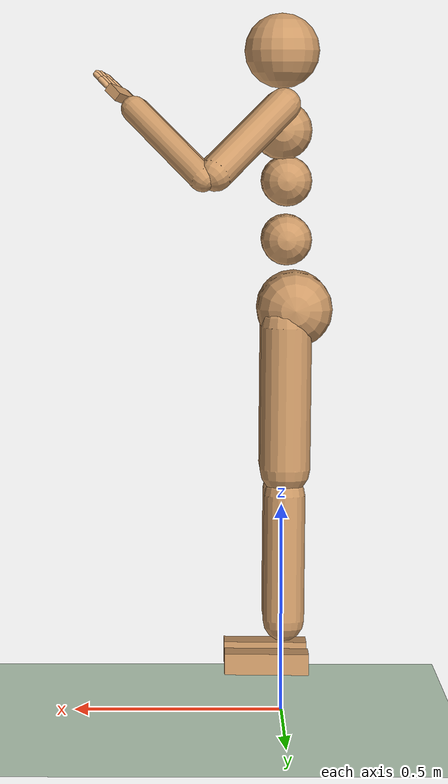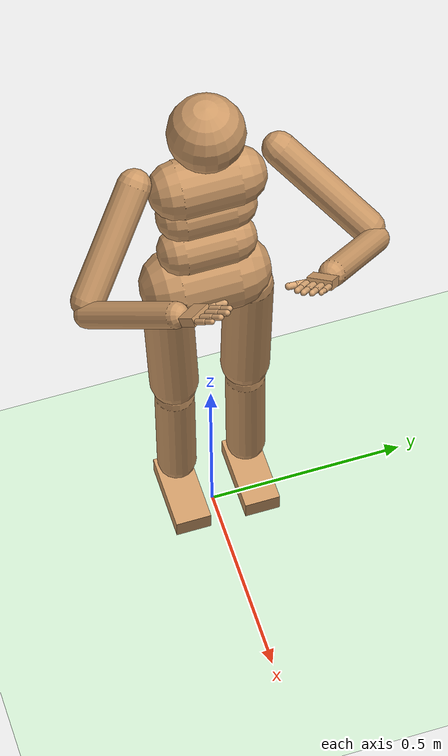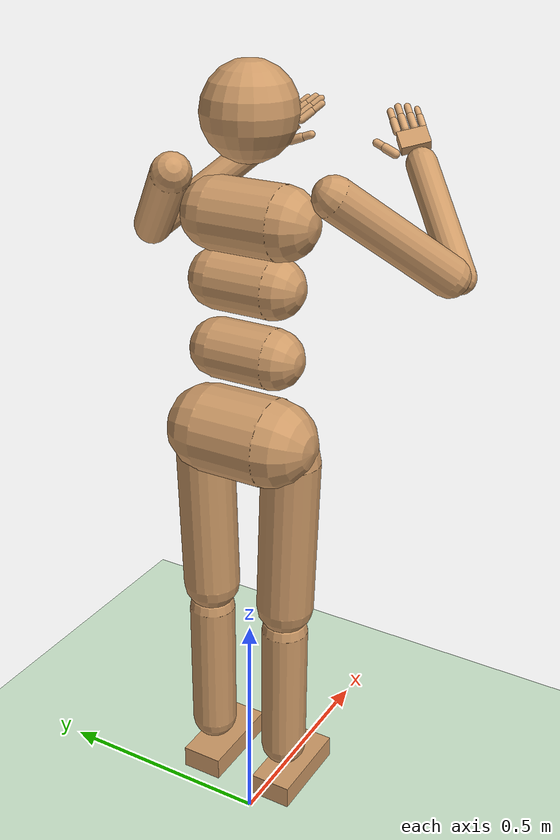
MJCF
<mujoco model="humanoid_fingers">

    <compiler angle="degree" inertiafromgeom="true"/>
    <default>
        <joint armature="1" damping="1" limited="true"/>
        <geom conaffinity="1" condim="1" contype="1" margin="0.001" material="geom" rgba="0.8 0.6 .4 1"/>
        <motor ctrllimited="true" ctrlrange="-.4 .4"/>
        <default class="finger">
            <joint type="hinge" armature="0.0008" damping="0.04" stiffness="0.6" limited="true"/>
            <geom type="capsule" size="0.008" condim="3" friction="1.5 0.05 0.0001"
                  contype="2" conaffinity="5" rgba="0.85 0.65 0.45 1"/>
        </default>
        <default class="thumb">
            <joint type="hinge" armature="0.0008" damping="0.04" stiffness="0.6" limited="true"/>
            <geom type="capsule" size="0.008" condim="3" friction="1.5 0.05 0.0001"
                  contype="4" conaffinity="3" rgba="0.85 0.65 0.45 1"/>
        </default>
    </default>
    <option integrator="RK4" iterations="50" solver="Newton" timestep="0.003"/>
    <size nkey="5" nuser_geom="1"/>
    <visual>
        <map fogend="5" fogstart="3"/>
    </visual>
    <asset>
        <texture builtin="gradient" height="100" rgb1=".4 .5 .6" rgb2="0 0 0" type="skybox" width="100"/>
        <texture builtin="flat" height="1278" mark="cross" markrgb="1 1 1" name="texgeom" random="0.01" rgb1="0.8 0.6 0.4" rgb2="0.8 0.6 0.4" type="cube" width="127"/>
        <texture builtin="checker" height="100" name="texplane" rgb1="0 0 0" rgb2="0.8 0.8 0.8" type="2d" width="100"/>
        <material name="MatPlane" reflectance="0.5" shininess="1" specular="1" texrepeat="60 60" texture="texplane"/>
        <material name="geom" texture="texgeom" texuniform="true"/>
    </asset>
    <worldbody>
        <light cutoff="100" diffuse="1 1 1" dir="-0 0 -1.3" directional="true" exponent="1" pos="0 0 1.3" specular=".1 .1 .1"/>
        <geom condim="3" friction="1 .1 .1" material="MatPlane" name="floor" pos="0 0 0" rgba="0.8 0.9 0.8 1" size="20 20 0.125" type="plane"/>
        <body name="torso" pos="0 0 1.4">
            <camera name="track" mode="trackcom" pos="0 -4 0" xyaxes="1 0 0 0 0 1"/>
            <joint armature="0" damping="0" limited="false" name="root" pos="0 0 0" stiffness="0" type="free"/>
            <geom fromto="0 -.07 0 0 .07 0" name="torso1" size="0.07" type="capsule"/>
            <geom name="head" pos="0 0 .19" size=".09" type="sphere" user="258"/>
            <geom fromto="-.01 -.06 -.12 -.01 .06 -.12" name="uwaist" size="0.06" type="capsule"/>
            <body name="lwaist" pos="-.01 0 -0.260" quat="1.000 0 -0.002 0">
                <geom fromto="0 -.06 0 0 .06 0" name="lwaist" size="0.06" type="capsule"/>
                <joint armature="0.02" axis="0 0 1" damping="5" name="abdomen_z" pos="0 0 0.065" range="-45 45" stiffness="20" type="hinge"/>
                <joint armature="0.02" axis="0 1 0" damping="5" name="abdomen_y" pos="0 0 0.065" range="-75 30" stiffness="10" type="hinge"/>
                <body name="pelvis" pos="0 0 -0.165" quat="1.000 0 -0.002 0">
                    <joint armature="0.02" axis="1 0 0" damping="5" name="abdomen_x" pos="0 0 0.1" range="-35 35" stiffness="10" type="hinge"/>
                    <geom fromto="-.02 -.07 0 -.02 .07 0" name="butt" size="0.09" type="capsule"/>
                    <body name="right_thigh" pos="0 -0.1 -0.04">
                        <joint armature="0.01" axis="1 0 0" damping="5" name="right_hip_x" pos="0 0 0" range="-25 5" stiffness="10" type="hinge"/>
                        <joint armature="0.01" axis="0 0 1" damping="5" name="right_hip_z" pos="0 0 0" range="-60 35" stiffness="10" type="hinge"/>
                        <joint armature="0.0080" axis="0 1 0" damping="5" name="right_hip_y" pos="0 0 0" range="-110 20" stiffness="20" type="hinge"/>
                        <geom fromto="0 0 0 0 0.01 -.34" name="right_thigh1" size="0.06" type="capsule"/>
                        <body name="right_shin" pos="0 0.01 -0.403">
                            <joint armature="0.0060" axis="0 -1 0" name="right_knee" pos="0 0 .02" range="-160 -2" type="hinge"/>
                            <geom fromto="0 0 0 0 0 -.3" name="right_shin1" size="0.049" type="capsule"/>
                            <body name="right_foot" pos="0 0 -0.45">
                                <geom name="right_foot" type="box" pos="0.04 0 0.05"
                                      size="0.10 0.045 0.025" user="0"/>
                            </body>
                        </body>
                    </body>
                    <body name="left_thigh" pos="0 0.1 -0.04">
                        <joint armature="0.01" axis="-1 0 0" damping="5" name="left_hip_x" pos="0 0 0" range="-25 5" stiffness="10" type="hinge"/>
                        <joint armature="0.01" axis="0 0 -1" damping="5" name="left_hip_z" pos="0 0 0" range="-60 35" stiffness="10" type="hinge"/>
                        <joint armature="0.01" axis="0 1 0" damping="5" name="left_hip_y" pos="0 0 0" range="-110 20" stiffness="20" type="hinge"/>
                        <geom fromto="0 0 0 0 -0.01 -.34" name="left_thigh1" size="0.06" type="capsule"/>
                        <body name="left_shin" pos="0 -0.01 -0.403">
                            <joint armature="0.0060" axis="0 -1 0" name="left_knee" pos="0 0 .02" range="-160 -2" stiffness="1" type="hinge"/>
                            <geom fromto="0 0 0 0 0 -.3" name="left_shin1" size="0.049" type="capsule"/>
                            <body name="left_foot" pos="0 0 -0.45">
                                <geom name="left_foot" type="box" pos="0.04 0 0.05"
                                      size="0.10 0.045 0.025" user="0"/>
                            </body>
                        </body>
                    </body>
                </body>
            </body>

            <!-- ==================== RIGHT ARM + HAND ==================== -->
            <body name="right_upper_arm" pos="0 -0.17 0.06">
                <joint armature="0.0068" axis="2 1 1" name="right_shoulder1" pos="0 0 0" range="-85 60" stiffness="1" type="hinge"/>
                <joint armature="0.0051" axis="0 -1 1" name="right_shoulder2" pos="0 0 0" range="-85 60" stiffness="1" type="hinge"/>
                <geom fromto="0 0 0 .16 -.16 -.16" name="right_uarm1" size="0.04 0.16" type="capsule"/>
                <body name="right_lower_arm" pos=".18 -.18 -.18">
                    <joint armature="0.0028" axis="0 -1 1" name="right_elbow" pos="0 0 0" range="-90 50" stiffness="0" type="hinge"/>
                    <geom fromto="0.01 0.01 0.01 .17 .17 .17" name="right_larm" size="0.031" type="capsule"/>

                    <body name="right_hand" pos=".18 .18 .18" quat="0.8881 0 -0.3251 0.3251">
                        <joint name="right_wrist" type="hinge" axis="0 1 0" pos="0 0 0"
                               range="-50 50" armature="0.002" damping="0.2" stiffness="1"/>
                        <!-- Kept the name `right_hand` so existing env lookups of the hand
                             geom still resolve. Now a frictional palm plate, not a point. -->
                        <geom name="right_hand" type="box" size="0.021 0.030 0.011" pos="0.041 0 0"
                              condim="3" friction="1.5 0.05 0.0001"/>

                        <body name="right_f1_prox" pos="0.072 0.026 0">
                            <joint class="finger" name="right_f1_mcp" axis="0 1 0" range="-20 95"/>
                            <geom class="finger" name="right_f1_prox" fromto="0 0 0 0.028 0 0"/>
                            <body name="right_f1_dist" pos="0.030 0 0">
                                <joint class="finger" name="right_f1_pip" axis="0 1 0" range="0 100"/>
                                <geom class="finger" name="right_f1_dist" fromto="0 0 0 0.023 0 0" size="0.007"/>
                            </body>
                        </body>
                        <body name="right_f2_prox" pos="0.074 0.009 0">
                            <joint class="finger" name="right_f2_mcp" axis="0 1 0" range="-20 95"/>
                            <geom class="finger" name="right_f2_prox" fromto="0 0 0 0.031 0 0"/>
                            <body name="right_f2_dist" pos="0.033 0 0">
                                <joint class="finger" name="right_f2_pip" axis="0 1 0" range="0 100"/>
                                <geom class="finger" name="right_f2_dist" fromto="0 0 0 0.025 0 0" size="0.007"/>
                            </body>
                        </body>
                        <body name="right_f3_prox" pos="0.073 -0.009 0">
                            <joint class="finger" name="right_f3_mcp" axis="0 1 0" range="-20 95"/>
                            <geom class="finger" name="right_f3_prox" fromto="0 0 0 0.029 0 0"/>
                            <body name="right_f3_dist" pos="0.031 0 0">
                                <joint class="finger" name="right_f3_pip" axis="0 1 0" range="0 100"/>
                                <geom class="finger" name="right_f3_dist" fromto="0 0 0 0.023 0 0" size="0.007"/>
                            </body>
                        </body>
                        <body name="right_f4_prox" pos="0.070 -0.026 0">
                            <joint class="finger" name="right_f4_mcp" axis="0 1 0" range="-20 95"/>
                            <geom class="finger" name="right_f4_prox" fromto="0 0 0 0.024 0 0" size="0.007"/>
                            <body name="right_f4_dist" pos="0.026 0 0">
                                <joint class="finger" name="right_f4_pip" axis="0 1 0" range="0 100"/>
                                <geom class="finger" name="right_f4_dist" fromto="0 0 0 0.019 0 0" size="0.006"/>
                            </body>
                        </body>
                        <body name="right_th_meta" pos="0.030 0.040 -0.014">
                            <joint class="thumb" name="right_thumb_opp" axis="0.6 -0.8 0" range="-50 10"/>
                            <joint class="thumb" name="right_thumb_cmc" axis="0 0 -1" range="-10 28"/>
                            <geom class="thumb" name="right_th_meta" fromto="0 0 0 0.02088 0.01566 0" size="0.0092"/>
                            <body name="right_th_dist" pos="0.02088 0.01566 0">
                                <joint class="thumb" name="right_thumb_ip" axis="0 0 -1" range="0 14"/>
                                <geom class="thumb" name="right_th_dist" fromto="0 0 0 0.01712 0.01284 0" size="0.008"/>
                            </body>
                        </body>
                    </body>
                </body>
            </body>

            <!-- ==================== LEFT ARM + HAND ==================== -->
            <body name="left_upper_arm" pos="0 0.17 0.06">
                <joint armature="0.0068" axis="2 -1 1" name="left_shoulder1" pos="0 0 0" range="-60 85" stiffness="1" type="hinge"/>
                <joint armature="0.0051" axis="0 1 1" name="left_shoulder2" pos="0 0 0" range="-60 85" stiffness="1" type="hinge"/>
                <geom fromto="0 0 0 .16 .16 -.16" name="left_uarm1" size="0.04 0.16" type="capsule"/>
                <body name="left_lower_arm" pos=".18 .18 -.18">
                    <joint armature="0.0028" axis="0 -1 -1" name="left_elbow" pos="0 0 0" range="-90 50" stiffness="0" type="hinge"/>
                    <geom fromto="0.01 -0.01 0.01 .17 -.17 .17" name="left_larm" size="0.031" type="capsule"/>

                    <!-- Mirrored: local +x onto the forearm axis (1,-1,1)/sqrt(3). -->
                    <body name="left_hand" pos=".18 -.18 .18" quat="0.8881 0 -0.3251 -0.3251">
                        <joint name="left_wrist" type="hinge" axis="0 1 0" pos="0 0 0"
                               range="-50 50" armature="0.002" damping="0.2" stiffness="1"/>
                        <geom name="left_hand" type="box" size="0.021 0.030 0.011" pos="0.041 0 0"
                              condim="3" friction="1.5 0.05 0.0001"/>

                        <body name="left_f1_prox" pos="0.072 -0.026 0">
                            <joint class="finger" name="left_f1_mcp" axis="0 1 0" range="-20 95"/>
                            <geom class="finger" name="left_f1_prox" fromto="0 0 0 0.028 0 0"/>
                            <body name="left_f1_dist" pos="0.030 0 0">
                                <joint class="finger" name="left_f1_pip" axis="0 1 0" range="0 100"/>
                                <geom class="finger" name="left_f1_dist" fromto="0 0 0 0.023 0 0" size="0.007"/>
                            </body>
                        </body>
                        <body name="left_f2_prox" pos="0.074 -0.009 0">
                            <joint class="finger" name="left_f2_mcp" axis="0 1 0" range="-20 95"/>
                            <geom class="finger" name="left_f2_prox" fromto="0 0 0 0.031 0 0"/>
                            <body name="left_f2_dist" pos="0.033 0 0">
                                <joint class="finger" name="left_f2_pip" axis="0 1 0" range="0 100"/>
                                <geom class="finger" name="left_f2_dist" fromto="0 0 0 0.025 0 0" size="0.007"/>
                            </body>
                        </body>
                        <body name="left_f3_prox" pos="0.073 0.009 0">
                            <joint class="finger" name="left_f3_mcp" axis="0 1 0" range="-20 95"/>
                            <geom class="finger" name="left_f3_prox" fromto="0 0 0 0.029 0 0"/>
                            <body name="left_f3_dist" pos="0.031 0 0">
                                <joint class="finger" name="left_f3_pip" axis="0 1 0" range="0 100"/>
                                <geom class="finger" name="left_f3_dist" fromto="0 0 0 0.023 0 0" size="0.007"/>
                            </body>
                        </body>
                        <body name="left_f4_prox" pos="0.070 0.026 0">
                            <joint class="finger" name="left_f4_mcp" axis="0 1 0" range="-20 95"/>
                            <geom class="finger" name="left_f4_prox" fromto="0 0 0 0.024 0 0" size="0.007"/>
                            <body name="left_f4_dist" pos="0.026 0 0">
                                <joint class="finger" name="left_f4_pip" axis="0 1 0" range="0 100"/>
                                <geom class="finger" name="left_f4_dist" fromto="0 0 0 0.019 0 0" size="0.006"/>
                            </body>
                        </body>
                        <body name="left_th_meta" pos="0.030 -0.040 -0.014">
                            <!-- Mirrored opposition axis: pseudovector, (a,b,c)->(-a,b,-c). -->
                            <joint class="thumb" name="left_thumb_opp" axis="-0.6 -0.8 0" range="-50 10"/>
                            <joint class="thumb" name="left_thumb_cmc" axis="0 0 1" range="-10 28"/>
                            <geom class="thumb" name="left_th_meta" fromto="0 0 0 0.02088 -0.01566 0" size="0.0092"/>
                            <body name="left_th_dist" pos="0.02088 -0.01566 0">
                                <joint class="thumb" name="left_thumb_ip" axis="0 0 1" range="0 14"/>
                                <geom class="thumb" name="left_th_dist" fromto="0 0 0 0.01712 -0.01284 0" size="0.008"/>
                            </body>
                        </body>
                    </body>
                </body>
            </body>
        </body>
    </worldbody>

    <tendon>
        <fixed name="left_hipknee">
            <joint coef="-1" joint="left_hip_y"/>
            <joint coef="1" joint="left_knee"/>
        </fixed>
        <fixed name="right_hipknee">
            <joint coef="-1" joint="right_hip_y"/>
            <joint coef="1" joint="right_knee"/>
        </fixed>

        <!-- One tendon per hand couples all eight finger joints: a single positive
             ctrl closes the whole hand, like a tendon-driven gripper. -->
        <fixed name="right_grip">
            <joint coef="1" joint="right_f1_mcp"/>
            <joint coef="1" joint="right_f1_pip"/>
            <joint coef="1" joint="right_f2_mcp"/>
            <joint coef="1" joint="right_f2_pip"/>
            <joint coef="1" joint="right_f3_mcp"/>
            <joint coef="1" joint="right_f3_pip"/>
            <joint coef="1" joint="right_f4_mcp"/>
            <joint coef="1" joint="right_f4_pip"/>
        </fixed>
        <fixed name="right_thumb">
            <joint coef="1" joint="right_thumb_cmc"/>
            <joint coef="1" joint="right_thumb_ip"/>
        </fixed>
        <fixed name="left_grip">
            <joint coef="1" joint="left_f1_mcp"/>
            <joint coef="1" joint="left_f1_pip"/>
            <joint coef="1" joint="left_f2_mcp"/>
            <joint coef="1" joint="left_f2_pip"/>
            <joint coef="1" joint="left_f3_mcp"/>
            <joint coef="1" joint="left_f3_pip"/>
            <joint coef="1" joint="left_f4_mcp"/>
            <joint coef="1" joint="left_f4_pip"/>
        </fixed>
        <fixed name="left_thumb">
            <joint coef="1" joint="left_thumb_cmc"/>
            <joint coef="1" joint="left_thumb_ip"/>
        </fixed>
    </tendon>

    <actuator>
        <!-- == indices 0..16: IDENTICAL to humanoid.xml, same order == -->
        <motor gear="100" joint="abdomen_y" name="abdomen_y"/>
        <motor gear="100" joint="abdomen_z" name="abdomen_z"/>
        <motor gear="100" joint="abdomen_x" name="abdomen_x"/>
        <motor gear="100" joint="right_hip_x" name="right_hip_x"/>
        <motor gear="100" joint="right_hip_z" name="right_hip_z"/>
        <motor gear="300" joint="right_hip_y" name="right_hip_y"/>
        <motor gear="200" joint="right_knee" name="right_knee"/>
        <motor gear="100" joint="left_hip_x" name="left_hip_x"/>
        <motor gear="100" joint="left_hip_z" name="left_hip_z"/>
        <motor gear="300" joint="left_hip_y" name="left_hip_y"/>
        <motor gear="200" joint="left_knee" name="left_knee"/>
        <motor gear="200" joint="right_shoulder1" name="right_shoulder1"/>
        <motor gear="200" joint="right_shoulder2" name="right_shoulder2"/>
        <motor gear="200" joint="right_elbow" name="right_elbow"/>
        <motor gear="200" joint="left_shoulder1" name="left_shoulder1"/>
        <motor gear="200" joint="left_shoulder2" name="left_shoulder2"/>
        <motor gear="200" joint="left_elbow" name="left_elbow"/>
        <!-- == indices 17..22: the new hand DOFs == -->
        <motor gear="8"  joint="right_wrist"  name="right_wrist"/>
        <motor gear="12" tendon="right_grip"  name="right_grip"/>
        <motor gear="6"  tendon="right_thumb" name="right_thumb"/>
        <motor gear="8"  joint="left_wrist"   name="left_wrist"/>
        <motor gear="12" tendon="left_grip"   name="left_grip"/>
        <motor gear="6"  tendon="left_thumb"  name="left_thumb"/>
        <!-- == indices 23..24: thumb opposition, appended so 0..22 keep their
             meaning for anything already trained against the 23-action layout == -->
        <motor gear="5"  joint="right_thumb_opp" name="right_thumb_opp"/>
        <motor gear="5"  joint="left_thumb_opp"  name="left_thumb_opp"/>
    </actuator>
</mujoco>
